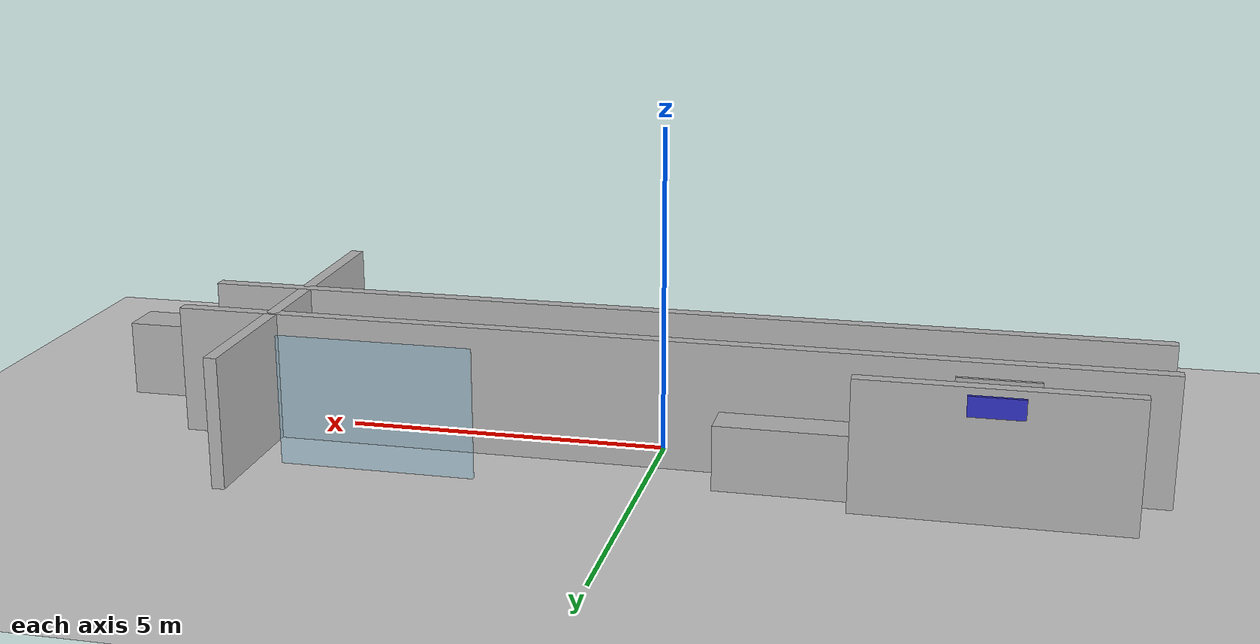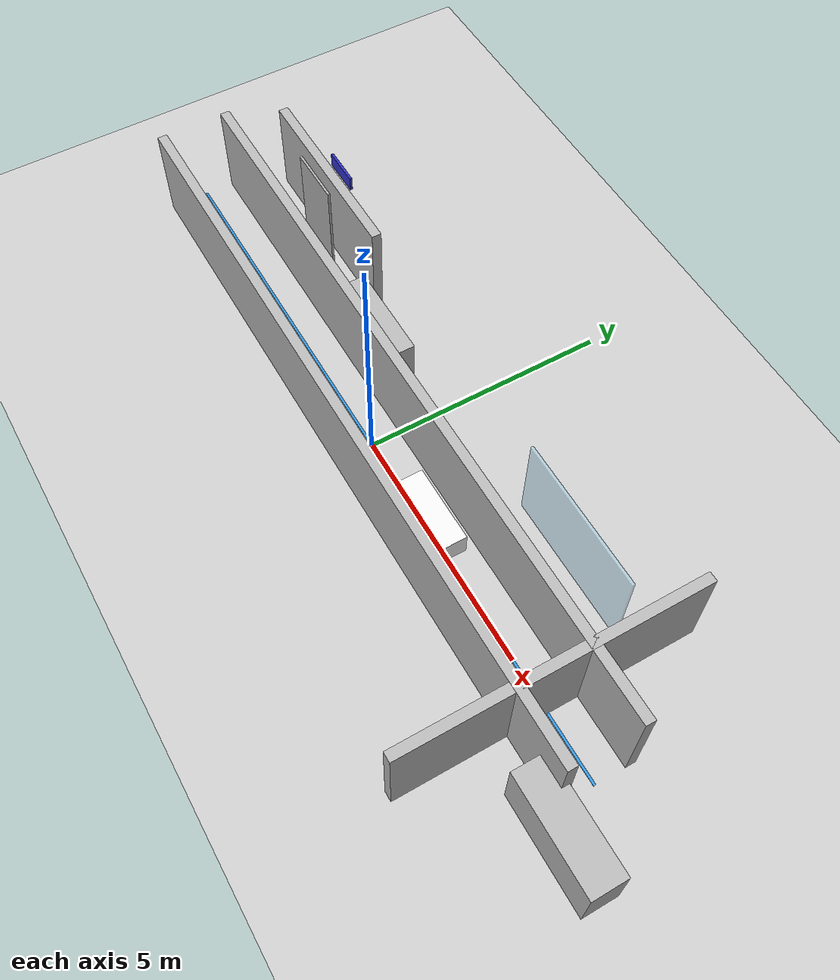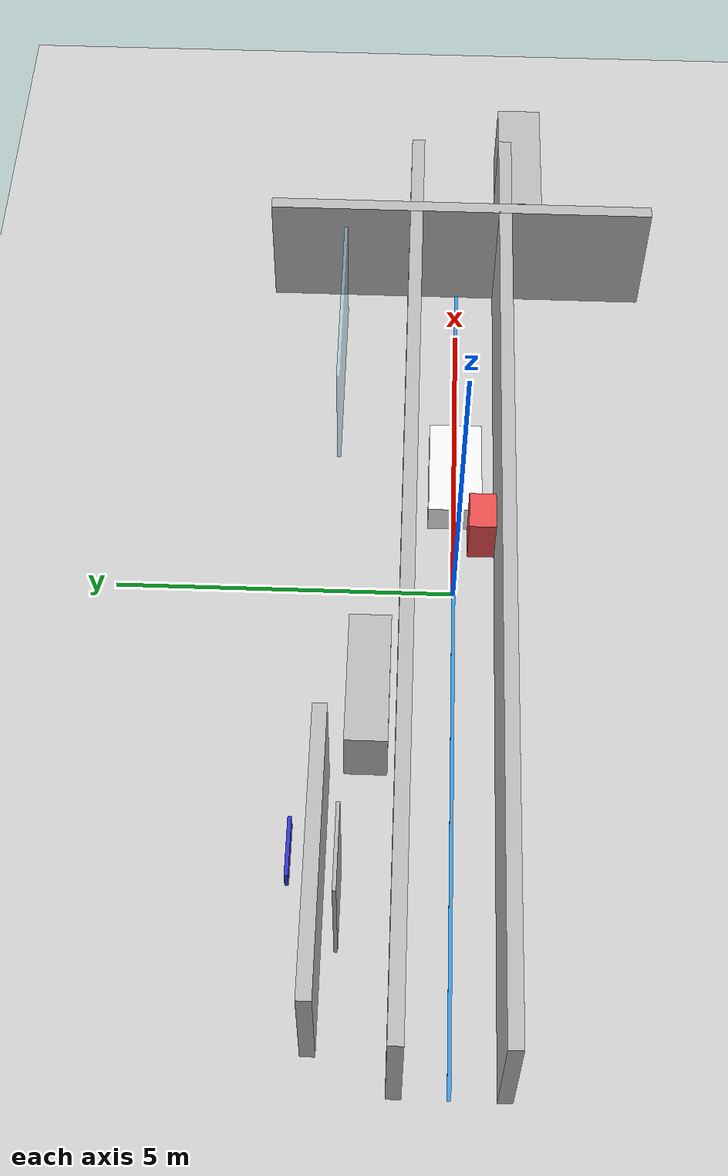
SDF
<?xml version="1.0" ?>
<sdf version="1.6">
  <world name="hospital_world">

    <!-- ===== PHYSICS ===== -->
    <physics type="ode">
      <real_time_factor>1.0</real_time_factor>
      <max_step_size>0.001</max_step_size>
    </physics>

    <!-- ===== LIGHT & GROUND ===== -->
    <include><uri>model://sun</uri></include>
    <include><uri>model://ground_plane</uri></include>

    <!-- ===== LEFT WALL ===== -->
    <model name="corridor_left_wall">
      <static>true</static>
      <pose>0 0.7 1 0 0 0</pose>
      <link name="link">
        <collision name="c"><geometry><box><size>15 0.2 2</size></box></geometry></collision>
        <visual name="v"><geometry><box><size>15 0.2 2</size></box></geometry></visual>
      </link>
    </model>

    <!-- ===== RIGHT WALL ===== -->
    <model name="corridor_right_wall">
      <static>true</static>
      <pose>0 -0.7 1 0 0 0</pose>
      <link name="link">
        <collision name="c"><geometry><box><size>15 0.2 2</size></box></geometry></collision>
        <visual name="v"><geometry><box><size>15 0.2 2</size></box></geometry></visual>
      </link>
    </model>

    <!-- ===== PATIENT ROOM WALL ===== -->
    <model name="patient_room_wall">
      <static>true</static>
      <pose>-5 1.8 1 0 0 0</pose>
      <link name="link">
        <collision name="c"><geometry><box><size>4 0.2 2</size></box></geometry></collision>
        <visual name="v"><geometry><box><size>4 0.2 2</size></box></geometry></visual>
      </link>
    </model>

    <!-- ===== HOSPITAL BED ===== -->
    <model name="hospital_bed">
      <static>true</static>
      <pose>2 0 0.25 0 0 0</pose>
      <link name="link">
        <collision name="c"><geometry><box><size>1.6 0.8 0.5</size></box></geometry></collision>
        <visual name="v">
          <geometry><box><size>1.6 0.8 0.5</size></box></geometry>
          <material><ambient>0.95 0.95 0.95 1</ambient></material>
        </visual>
      </link>
    </model>

    <!-- ===== CENTER LINE ===== -->
    <model name="corridor_line">
      <static>true</static>
      <pose>0 0 0.01 0 0 0</pose>
      <link name="link">
        <visual name="v">
          <geometry><box><size>15 0.05 0.01</size></box></geometry>
          <material><ambient>0.2 0.6 0.9 1</ambient></material>
        </visual>
      </link>
    </model>

    <!-- ===== DOOR FRAME ===== -->
    <model name="door_frame">
      <static>true</static>
      <pose>-5 1.5 1 0 0 0</pose>
      <link name="link">
        <visual name="v">
          <geometry><box><size>1.2 0.05 2</size></box></geometry>
          <material><ambient>0.7 0.7 0.7 1</ambient></material>
        </visual>
      </link>
    </model>

    <!-- ===== ROOM SIGN ===== -->
    <model name="sign_patient_room">
      <static>true</static>
      <pose>-5 2.1 1.8 0 0 0</pose>
      <link name="link">
        <visual name="v">
          <geometry><box><size>0.8 0.05 0.3</size></box></geometry>
          <material><ambient>0.2 0.2 0.8 1</ambient></material>
        </visual>
      </link>
    </model>

    <!-- ===== ICU GLASS ===== -->
    <model name="icu_glass_wall">
      <static>true</static>
      <pose>4 1.8 1 0 0 0</pose>
      <link name="link">
        <collision name="c"><geometry><box><size>3 0.05 2</size></box></geometry></collision>
        <visual name="v">
          <geometry><box><size>3 0.05 2</size></box></geometry>
          <material><ambient>0.6 0.8 0.9 0.5</ambient></material>
        </visual>
      </link>
    </model>

    <!-- ===== NURSE STATION ===== -->
    <model name="nurse_station">
      <static>true</static>
      <pose>-2 1.2 0.5 0 0 0</pose>
      <link name="link">
        <collision name="c"><geometry><box><size>2 0.6 1</size></box></geometry></collision>
        <visual name="v"><geometry><box><size>2 0.6 1</size></box></geometry></visual>
      </link>
    </model>

    <!-- ===== T JUNCTION ===== -->
    <model name="t_corridor_wall">
      <static>true</static>
      <pose>6 0 1 0 0 1.57</pose>
      <link name="link">
        <collision name="c"><geometry><box><size>6 0.2 2</size></box></geometry></collision>
        <visual name="v"><geometry><box><size>6 0.2 2</size></box></geometry></visual>
      </link>
    </model>

    <!-- ===== PHARMACY ===== -->
    <model name="pharmacy_counter">
      <static>true</static>
      <pose>8 -1 0.6 0 0 0</pose>
      <link name="link">
        <collision name="c"><geometry><box><size>2.2 0.7 1.2</size></box></geometry></collision>
        <visual name="v"><geometry><box><size>2.2 0.7 1.2</size></box></geometry></visual>
      </link>
    </model>

    <!-- ===== EMERGENCY CART ===== -->
    <model name="emergency_cart">
      <static>true</static>
      <pose>1 -0.4 0.4 0 0 0</pose>
      <link name="link">
        <collision name="c"><geometry><box><size>0.6 0.4 0.8</size></box></geometry></collision>
        <visual name="v">
          <geometry><box><size>0.6 0.4 0.8</size></box></geometry>
          <material><ambient>0.9 0.3 0.3 1</ambient></material>
        </visual>
      </link>
    </model>

  </world>
</sdf>
